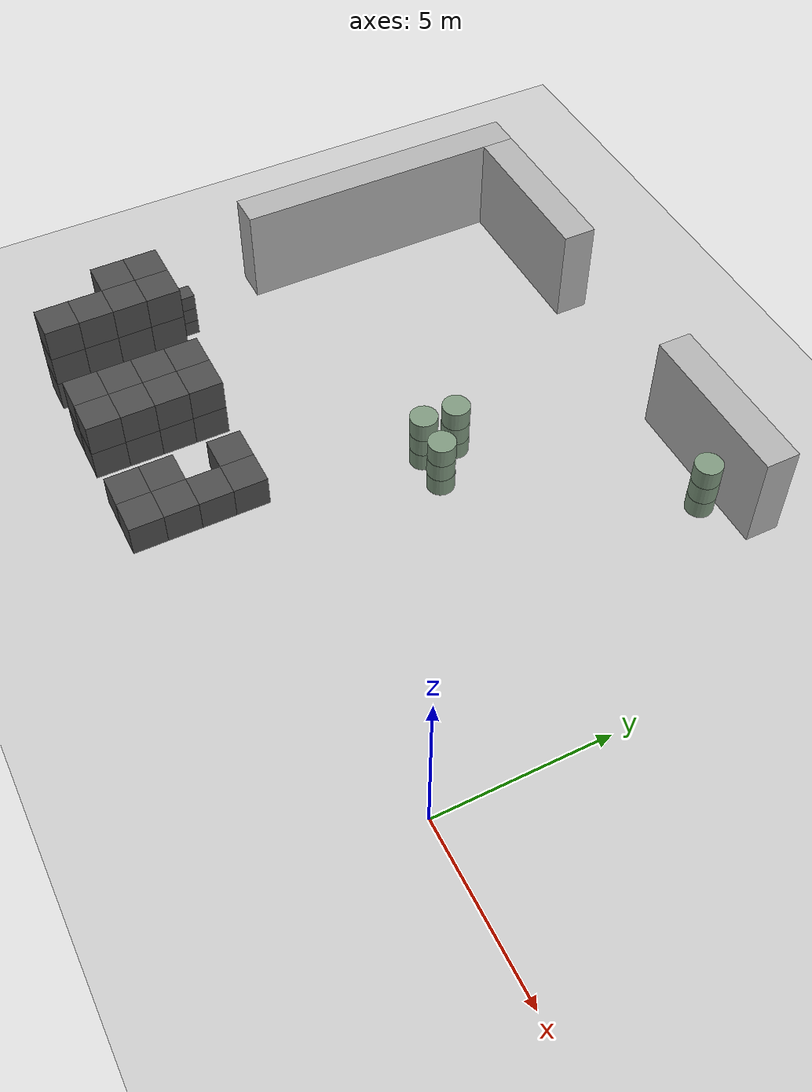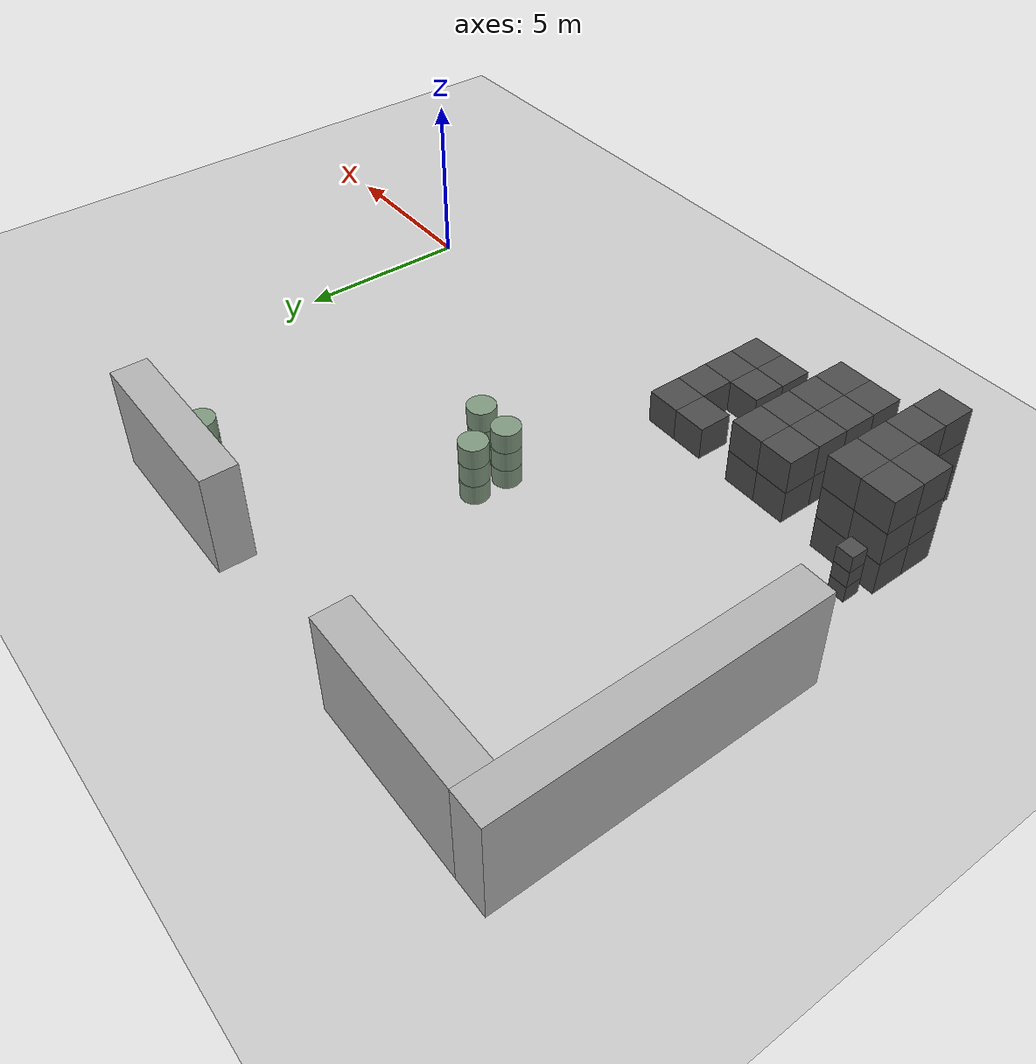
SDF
<sdf version="1.6">
 <world name="default">
  <include><uri>model://ground_plane</uri></include>
  <model name="wall_1">
   <pose>-19.0 8.0 1.5 0 -0 0</pose>
   <static>True</static>
   <link name="link">
    <inertial>
     <mass>100</mass>
     <inertia>
      <ixx>0.166667</ixx>
      <ixy>0</ixy>
      <ixz>0</ixz>
      <iyy>0.166667</iyy>
      <iyz>0</iyz>
      <izz>0.166667</izz>
     </inertia>
    </inertial>
    <collision name="collision"><geometry><box><size>1.0 9.0 3.0</size></box></geometry></collision>
    <visual name="visual">
     <geometry><box><size>1.0 9.0 3.0</size></box></geometry>
     <material><ambient>0.7 0.7 0.7 1</ambient><diffuse>0.7 0.7 0.7 1</diffuse></material>
    </visual>
   </link>
  </model>
  <model name="wall_9">
   <pose>-16.0 12.0 1.5 0 -0 0</pose>
   <static>True</static>
   <link name="link">
    <inertial>
     <mass>100</mass>
     <inertia>
      <ixx>0.166667</ixx>
      <ixy>0</ixy>
      <ixz>0</ixz>
      <iyy>0.166667</iyy>
      <iyz>0</iyz>
      <izz>0.166667</izz>
     </inertia>
    </inertial>
    <collision name="collision"><geometry><box><size>5.0 1.0 3.0</size></box></geometry></collision>
    <visual name="visual">
     <geometry><box><size>5.0 1.0 3.0</size></box></geometry>
     <material><ambient>0.7 0.7 0.7 1</ambient><diffuse>0.7 0.7 0.7 1</diffuse></material>
    </visual>
   </link>
  </model>
  <model name="wall_10">
   <pose>-6.0 12.0 1.5 0 -0 0</pose>
   <static>True</static>
   <link name="link">
    <inertial>
     <mass>100</mass>
     <inertia>
      <ixx>0.166667</ixx>
      <ixy>0</ixy>
      <ixz>0</ixz>
      <iyy>0.166667</iyy>
      <iyz>0</iyz>
      <izz>0.166667</izz>
     </inertia>
    </inertial>
    <collision name="collision"><geometry><box><size>5.0 1.0 3.0</size></box></geometry></collision>
    <visual name="visual">
     <geometry><box><size>5.0 1.0 3.0</size></box></geometry>
     <material><ambient>0.7 0.7 0.7 1</ambient><diffuse>0.7 0.7 0.7 1</diffuse></material>
    </visual>
   </link>
  </model>
  <model name="unit_box_6">
   <pose>-18.0 -1.0 0.5 0 -0 0</pose>
   <static>True</static>
   <link name="link">
    <inertial>
     <mass>100</mass>
     <inertia>
      <ixx>0.166667</ixx>
      <ixy>0</ixy>
      <ixz>0</ixz>
      <iyy>0.166667</iyy>
      <iyz>0</iyz>
      <izz>0.166667</izz>
     </inertia>
    </inertial>
    <collision name="collision"><geometry><box><size>1.0 1.0 1.0</size></box></geometry></collision>
    <visual name="visual">
     <geometry><box><size>1.0 1.0 1.0</size></box></geometry>
     <material><ambient>0.3 0.3 0.3 1</ambient><diffuse>0.3 0.3 0.3 1</diffuse></material>
    </visual>
   </link>
  </model>
  <model name="unit_box_7">
   <pose>-18.0 -1.0 1.5 0 -0 0</pose>
   <static>True</static>
   <link name="link">
    <inertial>
     <mass>100</mass>
     <inertia>
      <ixx>0.166667</ixx>
      <ixy>0</ixy>
      <ixz>0</ixz>
      <iyy>0.166667</iyy>
      <iyz>0</iyz>
      <izz>0.166667</izz>
     </inertia>
    </inertial>
    <collision name="collision"><geometry><box><size>1.0 1.0 1.0</size></box></geometry></collision>
    <visual name="visual">
     <geometry><box><size>1.0 1.0 1.0</size></box></geometry>
     <material><ambient>0.3 0.3 0.3 1</ambient><diffuse>0.3 0.3 0.3 1</diffuse></material>
    </visual>
   </link>
  </model>
  <model name="unit_box_8">
   <pose>-18.0 -1.0 2.5 0 -0 0</pose>
   <static>True</static>
   <link name="link">
    <inertial>
     <mass>100</mass>
     <inertia>
      <ixx>0.166667</ixx>
      <ixy>0</ixy>
      <ixz>0</ixz>
      <iyy>0.166667</iyy>
      <iyz>0</iyz>
      <izz>0.166667</izz>
     </inertia>
    </inertial>
    <collision name="collision"><geometry><box><size>1.0 1.0 1.0</size></box></geometry></collision>
    <visual name="visual">
     <geometry><box><size>1.0 1.0 1.0</size></box></geometry>
     <material><ambient>0.3 0.3 0.3 1</ambient><diffuse>0.3 0.3 0.3 1</diffuse></material>
    </visual>
   </link>
  </model>
  <model name="unit_box_9">
   <pose>-18.0 0.0 0.5 0 -0 0</pose>
   <static>True</static>
   <link name="link">
    <inertial>
     <mass>100</mass>
     <inertia>
      <ixx>0.166667</ixx>
      <ixy>0</ixy>
      <ixz>0</ixz>
      <iyy>0.166667</iyy>
      <iyz>0</iyz>
      <izz>0.166667</izz>
     </inertia>
    </inertial>
    <collision name="collision"><geometry><box><size>1.0 1.0 1.0</size></box></geometry></collision>
    <visual name="visual">
     <geometry><box><size>1.0 1.0 1.0</size></box></geometry>
     <material><ambient>0.3 0.3 0.3 1</ambient><diffuse>0.3 0.3 0.3 1</diffuse></material>
    </visual>
   </link>
  </model>
  <model name="unit_box_10">
   <pose>-18.0 0.0 1.5 0 -0 0</pose>
   <static>True</static>
   <link name="link">
    <inertial>
     <mass>100</mass>
     <inertia>
      <ixx>0.166667</ixx>
      <ixy>0</ixy>
      <ixz>0</ixz>
      <iyy>0.166667</iyy>
      <iyz>0</iyz>
      <izz>0.166667</izz>
     </inertia>
    </inertial>
    <collision name="collision"><geometry><box><size>1.0 1.0 1.0</size></box></geometry></collision>
    <visual name="visual">
     <geometry><box><size>1.0 1.0 1.0</size></box></geometry>
     <material><ambient>0.3 0.3 0.3 1</ambient><diffuse>0.3 0.3 0.3 1</diffuse></material>
    </visual>
   </link>
  </model>
  <model name="unit_box_11">
   <pose>-18.0 0.0 2.5 0 -0 0</pose>
   <static>True</static>
   <link name="link">
    <inertial>
     <mass>100</mass>
     <inertia>
      <ixx>0.166667</ixx>
      <ixy>0</ixy>
      <ixz>0</ixz>
      <iyy>0.166667</iyy>
      <iyz>0</iyz>
      <izz>0.166667</izz>
     </inertia>
    </inertial>
    <collision name="collision"><geometry><box><size>1.0 1.0 1.0</size></box></geometry></collision>
    <visual name="visual">
     <geometry><box><size>1.0 1.0 1.0</size></box></geometry>
     <material><ambient>0.3 0.3 0.3 1</ambient><diffuse>0.3 0.3 0.3 1</diffuse></material>
    </visual>
   </link>
  </model>
  <model name="unit_box_12">
   <pose>-18.0 1.0 0.25 0 -0 0</pose>
   <static>True</static>
   <link name="link">
    <inertial>
     <mass>100</mass>
     <inertia>
      <ixx>0.166667</ixx>
      <ixy>0</ixy>
      <ixz>0</ixz>
      <iyy>0.166667</iyy>
      <iyz>0</iyz>
      <izz>0.166667</izz>
     </inertia>
    </inertial>
    <collision name="collision"><geometry><box><size>0.5 0.5 0.5</size></box></geometry></collision>
    <visual name="visual">
     <geometry><box><size>0.5 0.5 0.5</size></box></geometry>
     <material><ambient>0.3 0.3 0.3 1</ambient><diffuse>0.3 0.3 0.3 1</diffuse></material>
    </visual>
   </link>
  </model>
  <model name="unit_box_13">
   <pose>-18.0 1.0 0.75 0 -0 0</pose>
   <static>True</static>
   <link name="link">
    <inertial>
     <mass>100</mass>
     <inertia>
      <ixx>0.166667</ixx>
      <ixy>0</ixy>
      <ixz>0</ixz>
      <iyy>0.166667</iyy>
      <iyz>0</iyz>
      <izz>0.166667</izz>
     </inertia>
    </inertial>
    <collision name="collision"><geometry><box><size>0.5 0.5 0.5</size></box></geometry></collision>
    <visual name="visual">
     <geometry><box><size>0.5 0.5 0.5</size></box></geometry>
     <material><ambient>0.3 0.3 0.3 1</ambient><diffuse>0.3 0.3 0.3 1</diffuse></material>
    </visual>
   </link>
  </model>
  <model name="unit_box_14">
   <pose>-18.0 1.0 1.25 0 -0 0</pose>
   <static>True</static>
   <link name="link">
    <inertial>
     <mass>100</mass>
     <inertia>
      <ixx>0.166667</ixx>
      <ixy>0</ixy>
      <ixz>0</ixz>
      <iyy>0.166667</iyy>
      <iyz>0</iyz>
      <izz>0.166667</izz>
     </inertia>
    </inertial>
    <collision name="collision"><geometry><box><size>0.5 0.5 0.5</size></box></geometry></collision>
    <visual name="visual">
     <geometry><box><size>0.5 0.5 0.5</size></box></geometry>
     <material><ambient>0.3 0.3 0.3 1</ambient><diffuse>0.3 0.3 0.3 1</diffuse></material>
    </visual>
   </link>
  </model>
  <model name="unit_box_18">
   <pose>-17.0 -3.0 0.5 0 -0 0</pose>
   <static>True</static>
   <link name="link">
    <inertial>
     <mass>100</mass>
     <inertia>
      <ixx>0.166667</ixx>
      <ixy>0</ixy>
      <ixz>0</ixz>
      <iyy>0.166667</iyy>
      <iyz>0</iyz>
      <izz>0.166667</izz>
     </inertia>
    </inertial>
    <collision name="collision"><geometry><box><size>1.0 1.0 1.0</size></box></geometry></collision>
    <visual name="visual">
     <geometry><box><size>1.0 1.0 1.0</size></box></geometry>
     <material><ambient>0.3 0.3 0.3 1</ambient><diffuse>0.3 0.3 0.3 1</diffuse></material>
    </visual>
   </link>
  </model>
  <model name="unit_box_19">
   <pose>-17.0 -3.0 1.5 0 -0 0</pose>
   <static>True</static>
   <link name="link">
    <inertial>
     <mass>100</mass>
     <inertia>
      <ixx>0.166667</ixx>
      <ixy>0</ixy>
      <ixz>0</ixz>
      <iyy>0.166667</iyy>
      <iyz>0</iyz>
      <izz>0.166667</izz>
     </inertia>
    </inertial>
    <collision name="collision"><geometry><box><size>1.0 1.0 1.0</size></box></geometry></collision>
    <visual name="visual">
     <geometry><box><size>1.0 1.0 1.0</size></box></geometry>
     <material><ambient>0.3 0.3 0.3 1</ambient><diffuse>0.3 0.3 0.3 1</diffuse></material>
    </visual>
   </link>
  </model>
  <model name="unit_box_20">
   <pose>-17.0 -3.0 2.5 0 -0 0</pose>
   <static>True</static>
   <link name="link">
    <inertial>
     <mass>100</mass>
     <inertia>
      <ixx>0.166667</ixx>
      <ixy>0</ixy>
      <ixz>0</ixz>
      <iyy>0.166667</iyy>
      <iyz>0</iyz>
      <izz>0.166667</izz>
     </inertia>
    </inertial>
    <collision name="collision"><geometry><box><size>1.0 1.0 1.0</size></box></geometry></collision>
    <visual name="visual">
     <geometry><box><size>1.0 1.0 1.0</size></box></geometry>
     <material><ambient>0.3 0.3 0.3 1</ambient><diffuse>0.3 0.3 0.3 1</diffuse></material>
    </visual>
   </link>
  </model>
  <model name="unit_box_21">
   <pose>-17.0 -2.0 0.5 0 -0 0</pose>
   <static>True</static>
   <link name="link">
    <inertial>
     <mass>100</mass>
     <inertia>
      <ixx>0.166667</ixx>
      <ixy>0</ixy>
      <ixz>0</ixz>
      <iyy>0.166667</iyy>
      <iyz>0</iyz>
      <izz>0.166667</izz>
     </inertia>
    </inertial>
    <collision name="collision"><geometry><box><size>1.0 1.0 1.0</size></box></geometry></collision>
    <visual name="visual">
     <geometry><box><size>1.0 1.0 1.0</size></box></geometry>
     <material><ambient>0.3 0.3 0.3 1</ambient><diffuse>0.3 0.3 0.3 1</diffuse></material>
    </visual>
   </link>
  </model>
  <model name="unit_box_22">
   <pose>-17.0 -2.0 1.5 0 -0 0</pose>
   <static>True</static>
   <link name="link">
    <inertial>
     <mass>100</mass>
     <inertia>
      <ixx>0.166667</ixx>
      <ixy>0</ixy>
      <ixz>0</ixz>
      <iyy>0.166667</iyy>
      <iyz>0</iyz>
      <izz>0.166667</izz>
     </inertia>
    </inertial>
    <collision name="collision"><geometry><box><size>1.0 1.0 1.0</size></box></geometry></collision>
    <visual name="visual">
     <geometry><box><size>1.0 1.0 1.0</size></box></geometry>
     <material><ambient>0.3 0.3 0.3 1</ambient><diffuse>0.3 0.3 0.3 1</diffuse></material>
    </visual>
   </link>
  </model>
  <model name="unit_box_23">
   <pose>-17.0 -2.0 2.5 0 -0 0</pose>
   <static>True</static>
   <link name="link">
    <inertial>
     <mass>100</mass>
     <inertia>
      <ixx>0.166667</ixx>
      <ixy>0</ixy>
      <ixz>0</ixz>
      <iyy>0.166667</iyy>
      <iyz>0</iyz>
      <izz>0.166667</izz>
     </inertia>
    </inertial>
    <collision name="collision"><geometry><box><size>1.0 1.0 1.0</size></box></geometry></collision>
    <visual name="visual">
     <geometry><box><size>1.0 1.0 1.0</size></box></geometry>
     <material><ambient>0.3 0.3 0.3 1</ambient><diffuse>0.3 0.3 0.3 1</diffuse></material>
    </visual>
   </link>
  </model>
  <model name="unit_box_24">
   <pose>-17.0 -1.0 0.5 0 -0 0</pose>
   <static>True</static>
   <link name="link">
    <inertial>
     <mass>100</mass>
     <inertia>
      <ixx>0.166667</ixx>
      <ixy>0</ixy>
      <ixz>0</ixz>
      <iyy>0.166667</iyy>
      <iyz>0</iyz>
      <izz>0.166667</izz>
     </inertia>
    </inertial>
    <collision name="collision"><geometry><box><size>1.0 1.0 1.0</size></box></geometry></collision>
    <visual name="visual">
     <geometry><box><size>1.0 1.0 1.0</size></box></geometry>
     <material><ambient>0.3 0.3 0.3 1</ambient><diffuse>0.3 0.3 0.3 1</diffuse></material>
    </visual>
   </link>
  </model>
  <model name="unit_box_25">
   <pose>-17.0 -1.0 1.5 0 -0 0</pose>
   <static>True</static>
   <link name="link">
    <inertial>
     <mass>100</mass>
     <inertia>
      <ixx>0.166667</ixx>
      <ixy>0</ixy>
      <ixz>0</ixz>
      <iyy>0.166667</iyy>
      <iyz>0</iyz>
      <izz>0.166667</izz>
     </inertia>
    </inertial>
    <collision name="collision"><geometry><box><size>1.0 1.0 1.0</size></box></geometry></collision>
    <visual name="visual">
     <geometry><box><size>1.0 1.0 1.0</size></box></geometry>
     <material><ambient>0.3 0.3 0.3 1</ambient><diffuse>0.3 0.3 0.3 1</diffuse></material>
    </visual>
   </link>
  </model>
  <model name="unit_box_26">
   <pose>-17.0 -1.0 2.5 0 -0 0</pose>
   <static>True</static>
   <link name="link">
    <inertial>
     <mass>100</mass>
     <inertia>
      <ixx>0.166667</ixx>
      <ixy>0</ixy>
      <ixz>0</ixz>
      <iyy>0.166667</iyy>
      <iyz>0</iyz>
      <izz>0.166667</izz>
     </inertia>
    </inertial>
    <collision name="collision"><geometry><box><size>1.0 1.0 1.0</size></box></geometry></collision>
    <visual name="visual">
     <geometry><box><size>1.0 1.0 1.0</size></box></geometry>
     <material><ambient>0.3 0.3 0.3 1</ambient><diffuse>0.3 0.3 0.3 1</diffuse></material>
    </visual>
   </link>
  </model>
  <model name="unit_box_27">
   <pose>-17.0 0.0 0.5 0 -0 0</pose>
   <static>True</static>
   <link name="link">
    <inertial>
     <mass>100</mass>
     <inertia>
      <ixx>0.166667</ixx>
      <ixy>0</ixy>
      <ixz>0</ixz>
      <iyy>0.166667</iyy>
      <iyz>0</iyz>
      <izz>0.166667</izz>
     </inertia>
    </inertial>
    <collision name="collision"><geometry><box><size>1.0 1.0 1.0</size></box></geometry></collision>
    <visual name="visual">
     <geometry><box><size>1.0 1.0 1.0</size></box></geometry>
     <material><ambient>0.3 0.3 0.3 1</ambient><diffuse>0.3 0.3 0.3 1</diffuse></material>
    </visual>
   </link>
  </model>
  <model name="unit_box_28">
   <pose>-17.0 0.0 1.5 0 -0 0</pose>
   <static>True</static>
   <link name="link">
    <inertial>
     <mass>100</mass>
     <inertia>
      <ixx>0.166667</ixx>
      <ixy>0</ixy>
      <ixz>0</ixz>
      <iyy>0.166667</iyy>
      <iyz>0</iyz>
      <izz>0.166667</izz>
     </inertia>
    </inertial>
    <collision name="collision"><geometry><box><size>1.0 1.0 1.0</size></box></geometry></collision>
    <visual name="visual">
     <geometry><box><size>1.0 1.0 1.0</size></box></geometry>
     <material><ambient>0.3 0.3 0.3 1</ambient><diffuse>0.3 0.3 0.3 1</diffuse></material>
    </visual>
   </link>
  </model>
  <model name="unit_box_29">
   <pose>-17.0 0.0 2.5 0 -0 0</pose>
   <static>True</static>
   <link name="link">
    <inertial>
     <mass>100</mass>
     <inertia>
      <ixx>0.166667</ixx>
      <ixy>0</ixy>
      <ixz>0</ixz>
      <iyy>0.166667</iyy>
      <iyz>0</iyz>
      <izz>0.166667</izz>
     </inertia>
    </inertial>
    <collision name="collision"><geometry><box><size>1.0 1.0 1.0</size></box></geometry></collision>
    <visual name="visual">
     <geometry><box><size>1.0 1.0 1.0</size></box></geometry>
     <material><ambient>0.3 0.3 0.3 1</ambient><diffuse>0.3 0.3 0.3 1</diffuse></material>
    </visual>
   </link>
  </model>
  <model name="unit_box_30">
   <pose>-16.0 -1.0 0.25 0 -0 0</pose>
   <static>True</static>
   <link name="link">
    <inertial>
     <mass>100</mass>
     <inertia>
      <ixx>0.166667</ixx>
      <ixy>0</ixy>
      <ixz>0</ixz>
      <iyy>0.166667</iyy>
      <iyz>0</iyz>
      <izz>0.166667</izz>
     </inertia>
    </inertial>
    <collision name="collision"><geometry><box><size>0.5 0.5 0.5</size></box></geometry></collision>
    <visual name="visual">
     <geometry><box><size>0.5 0.5 0.5</size></box></geometry>
     <material><ambient>0.3 0.3 0.3 1</ambient><diffuse>0.3 0.3 0.3 1</diffuse></material>
    </visual>
   </link>
  </model>
  <model name="unit_box_33">
   <pose>-15.0 -3.0 0.5 0 -0 0</pose>
   <static>True</static>
   <link name="link">
    <inertial>
     <mass>100</mass>
     <inertia>
      <ixx>0.166667</ixx>
      <ixy>0</ixy>
      <ixz>0</ixz>
      <iyy>0.166667</iyy>
      <iyz>0</iyz>
      <izz>0.166667</izz>
     </inertia>
    </inertial>
    <collision name="collision"><geometry><box><size>1.0 1.0 1.0</size></box></geometry></collision>
    <visual name="visual">
     <geometry><box><size>1.0 1.0 1.0</size></box></geometry>
     <material><ambient>0.3 0.3 0.3 1</ambient><diffuse>0.3 0.3 0.3 1</diffuse></material>
    </visual>
   </link>
  </model>
  <model name="unit_box_34">
   <pose>-15.0 -3.0 1.5 0 -0 0</pose>
   <static>True</static>
   <link name="link">
    <inertial>
     <mass>100</mass>
     <inertia>
      <ixx>0.166667</ixx>
      <ixy>0</ixy>
      <ixz>0</ixz>
      <iyy>0.166667</iyy>
      <iyz>0</iyz>
      <izz>0.166667</izz>
     </inertia>
    </inertial>
    <collision name="collision"><geometry><box><size>1.0 1.0 1.0</size></box></geometry></collision>
    <visual name="visual">
     <geometry><box><size>1.0 1.0 1.0</size></box></geometry>
     <material><ambient>0.3 0.3 0.3 1</ambient><diffuse>0.3 0.3 0.3 1</diffuse></material>
    </visual>
   </link>
  </model>
  <model name="unit_box_35">
   <pose>-15.0 -2.0 0.5 0 -0 0</pose>
   <static>True</static>
   <link name="link">
    <inertial>
     <mass>100</mass>
     <inertia>
      <ixx>0.166667</ixx>
      <ixy>0</ixy>
      <ixz>0</ixz>
      <iyy>0.166667</iyy>
      <iyz>0</iyz>
      <izz>0.166667</izz>
     </inertia>
    </inertial>
    <collision name="collision"><geometry><box><size>1.0 1.0 1.0</size></box></geometry></collision>
    <visual name="visual">
     <geometry><box><size>1.0 1.0 1.0</size></box></geometry>
     <material><ambient>0.3 0.3 0.3 1</ambient><diffuse>0.3 0.3 0.3 1</diffuse></material>
    </visual>
   </link>
  </model>
  <model name="unit_box_36">
   <pose>-15.0 -2.0 1.5 0 -0 0</pose>
   <static>True</static>
   <link name="link">
    <inertial>
     <mass>100</mass>
     <inertia>
      <ixx>0.166667</ixx>
      <ixy>0</ixy>
      <ixz>0</ixz>
      <iyy>0.166667</iyy>
      <iyz>0</iyz>
      <izz>0.166667</izz>
     </inertia>
    </inertial>
    <collision name="collision"><geometry><box><size>1.0 1.0 1.0</size></box></geometry></collision>
    <visual name="visual">
     <geometry><box><size>1.0 1.0 1.0</size></box></geometry>
     <material><ambient>0.3 0.3 0.3 1</ambient><diffuse>0.3 0.3 0.3 1</diffuse></material>
    </visual>
   </link>
  </model>
  <model name="unit_box_37">
   <pose>-15.0 -1.0 0.5 0 -0 0</pose>
   <static>True</static>
   <link name="link">
    <inertial>
     <mass>100</mass>
     <inertia>
      <ixx>0.166667</ixx>
      <ixy>0</ixy>
      <ixz>0</ixz>
      <iyy>0.166667</iyy>
      <iyz>0</iyz>
      <izz>0.166667</izz>
     </inertia>
    </inertial>
    <collision name="collision"><geometry><box><size>1.0 1.0 1.0</size></box></geometry></collision>
    <visual name="visual">
     <geometry><box><size>1.0 1.0 1.0</size></box></geometry>
     <material><ambient>0.3 0.3 0.3 1</ambient><diffuse>0.3 0.3 0.3 1</diffuse></material>
    </visual>
   </link>
  </model>
  <model name="unit_box_38">
   <pose>-15.0 -1.0 1.5 0 -0 0</pose>
   <static>True</static>
   <link name="link">
    <inertial>
     <mass>100</mass>
     <inertia>
      <ixx>0.166667</ixx>
      <ixy>0</ixy>
      <ixz>0</ixz>
      <iyy>0.166667</iyy>
      <iyz>0</iyz>
      <izz>0.166667</izz>
     </inertia>
    </inertial>
    <collision name="collision"><geometry><box><size>1.0 1.0 1.0</size></box></geometry></collision>
    <visual name="visual">
     <geometry><box><size>1.0 1.0 1.0</size></box></geometry>
     <material><ambient>0.3 0.3 0.3 1</ambient><diffuse>0.3 0.3 0.3 1</diffuse></material>
    </visual>
   </link>
  </model>
  <model name="unit_box_39">
   <pose>-15.0 0.0 0.5 0 -0 0</pose>
   <static>True</static>
   <link name="link">
    <inertial>
     <mass>100</mass>
     <inertia>
      <ixx>0.166667</ixx>
      <ixy>0</ixy>
      <ixz>0</ixz>
      <iyy>0.166667</iyy>
      <iyz>0</iyz>
      <izz>0.166667</izz>
     </inertia>
    </inertial>
    <collision name="collision"><geometry><box><size>1.0 1.0 1.0</size></box></geometry></collision>
    <visual name="visual">
     <geometry><box><size>1.0 1.0 1.0</size></box></geometry>
     <material><ambient>0.3 0.3 0.3 1</ambient><diffuse>0.3 0.3 0.3 1</diffuse></material>
    </visual>
   </link>
  </model>
  <model name="unit_box_40">
   <pose>-15.0 0.0 1.5 0 -0 0</pose>
   <static>True</static>
   <link name="link">
    <inertial>
     <mass>100</mass>
     <inertia>
      <ixx>0.166667</ixx>
      <ixy>0</ixy>
      <ixz>0</ixz>
      <iyy>0.166667</iyy>
      <iyz>0</iyz>
      <izz>0.166667</izz>
     </inertia>
    </inertial>
    <collision name="collision"><geometry><box><size>1.0 1.0 1.0</size></box></geometry></collision>
    <visual name="visual">
     <geometry><box><size>1.0 1.0 1.0</size></box></geometry>
     <material><ambient>0.3 0.3 0.3 1</ambient><diffuse>0.3 0.3 0.3 1</diffuse></material>
    </visual>
   </link>
  </model>
  <model name="unit_box_43">
   <pose>-14.0 -3.0 0.5 0 -0 0</pose>
   <static>True</static>
   <link name="link">
    <inertial>
     <mass>100</mass>
     <inertia>
      <ixx>0.166667</ixx>
      <ixy>0</ixy>
      <ixz>0</ixz>
      <iyy>0.166667</iyy>
      <iyz>0</iyz>
      <izz>0.166667</izz>
     </inertia>
    </inertial>
    <collision name="collision"><geometry><box><size>1.0 1.0 1.0</size></box></geometry></collision>
    <visual name="visual">
     <geometry><box><size>1.0 1.0 1.0</size></box></geometry>
     <material><ambient>0.3 0.3 0.3 1</ambient><diffuse>0.3 0.3 0.3 1</diffuse></material>
    </visual>
   </link>
  </model>
  <model name="unit_box_44">
   <pose>-14.0 -3.0 1.5 0 -0 0</pose>
   <static>True</static>
   <link name="link">
    <inertial>
     <mass>100</mass>
     <inertia>
      <ixx>0.166667</ixx>
      <ixy>0</ixy>
      <ixz>0</ixz>
      <iyy>0.166667</iyy>
      <iyz>0</iyz>
      <izz>0.166667</izz>
     </inertia>
    </inertial>
    <collision name="collision"><geometry><box><size>1.0 1.0 1.0</size></box></geometry></collision>
    <visual name="visual">
     <geometry><box><size>1.0 1.0 1.0</size></box></geometry>
     <material><ambient>0.3 0.3 0.3 1</ambient><diffuse>0.3 0.3 0.3 1</diffuse></material>
    </visual>
   </link>
  </model>
  <model name="unit_box_45">
   <pose>-14.0 -2.0 0.5 0 -0 0</pose>
   <static>True</static>
   <link name="link">
    <inertial>
     <mass>100</mass>
     <inertia>
      <ixx>0.166667</ixx>
      <ixy>0</ixy>
      <ixz>0</ixz>
      <iyy>0.166667</iyy>
      <iyz>0</iyz>
      <izz>0.166667</izz>
     </inertia>
    </inertial>
    <collision name="collision"><geometry><box><size>1.0 1.0 1.0</size></box></geometry></collision>
    <visual name="visual">
     <geometry><box><size>1.0 1.0 1.0</size></box></geometry>
     <material><ambient>0.3 0.3 0.3 1</ambient><diffuse>0.3 0.3 0.3 1</diffuse></material>
    </visual>
   </link>
  </model>
  <model name="unit_box_46">
   <pose>-14.0 -2.0 1.5 0 -0 0</pose>
   <static>True</static>
   <link name="link">
    <inertial>
     <mass>100</mass>
     <inertia>
      <ixx>0.166667</ixx>
      <ixy>0</ixy>
      <ixz>0</ixz>
      <iyy>0.166667</iyy>
      <iyz>0</iyz>
      <izz>0.166667</izz>
     </inertia>
    </inertial>
    <collision name="collision"><geometry><box><size>1.0 1.0 1.0</size></box></geometry></collision>
    <visual name="visual">
     <geometry><box><size>1.0 1.0 1.0</size></box></geometry>
     <material><ambient>0.3 0.3 0.3 1</ambient><diffuse>0.3 0.3 0.3 1</diffuse></material>
    </visual>
   </link>
  </model>
  <model name="unit_box_47">
   <pose>-14.0 -1.0 0.5 0 -0 0</pose>
   <static>True</static>
   <link name="link">
    <inertial>
     <mass>100</mass>
     <inertia>
      <ixx>0.166667</ixx>
      <ixy>0</ixy>
      <ixz>0</ixz>
      <iyy>0.166667</iyy>
      <iyz>0</iyz>
      <izz>0.166667</izz>
     </inertia>
    </inertial>
    <collision name="collision"><geometry><box><size>1.0 1.0 1.0</size></box></geometry></collision>
    <visual name="visual">
     <geometry><box><size>1.0 1.0 1.0</size></box></geometry>
     <material><ambient>0.3 0.3 0.3 1</ambient><diffuse>0.3 0.3 0.3 1</diffuse></material>
    </visual>
   </link>
  </model>
  <model name="unit_box_48">
   <pose>-14.0 -1.0 1.5 0 -0 0</pose>
   <static>True</static>
   <link name="link">
    <inertial>
     <mass>100</mass>
     <inertia>
      <ixx>0.166667</ixx>
      <ixy>0</ixy>
      <ixz>0</ixz>
      <iyy>0.166667</iyy>
      <iyz>0</iyz>
      <izz>0.166667</izz>
     </inertia>
    </inertial>
    <collision name="collision"><geometry><box><size>1.0 1.0 1.0</size></box></geometry></collision>
    <visual name="visual">
     <geometry><box><size>1.0 1.0 1.0</size></box></geometry>
     <material><ambient>0.3 0.3 0.3 1</ambient><diffuse>0.3 0.3 0.3 1</diffuse></material>
    </visual>
   </link>
  </model>
  <model name="unit_box_49">
   <pose>-14.0 0.0 0.5 0 -0 0</pose>
   <static>True</static>
   <link name="link">
    <inertial>
     <mass>100</mass>
     <inertia>
      <ixx>0.166667</ixx>
      <ixy>0</ixy>
      <ixz>0</ixz>
      <iyy>0.166667</iyy>
      <iyz>0</iyz>
      <izz>0.166667</izz>
     </inertia>
    </inertial>
    <collision name="collision"><geometry><box><size>1.0 1.0 1.0</size></box></geometry></collision>
    <visual name="visual">
     <geometry><box><size>1.0 1.0 1.0</size></box></geometry>
     <material><ambient>0.3 0.3 0.3 1</ambient><diffuse>0.3 0.3 0.3 1</diffuse></material>
    </visual>
   </link>
  </model>
  <model name="unit_box_50">
   <pose>-14.0 0.0 1.5 0 -0 0</pose>
   <static>True</static>
   <link name="link">
    <inertial>
     <mass>100</mass>
     <inertia>
      <ixx>0.166667</ixx>
      <ixy>0</ixy>
      <ixz>0</ixz>
      <iyy>0.166667</iyy>
      <iyz>0</iyz>
      <izz>0.166667</izz>
     </inertia>
    </inertial>
    <collision name="collision"><geometry><box><size>1.0 1.0 1.0</size></box></geometry></collision>
    <visual name="visual">
     <geometry><box><size>1.0 1.0 1.0</size></box></geometry>
     <material><ambient>0.3 0.3 0.3 1</ambient><diffuse>0.3 0.3 0.3 1</diffuse></material>
    </visual>
   </link>
  </model>
  <model name="unit_box_52">
   <pose>-12.0 -3.0 0.5 0 -0 0</pose>
   <static>True</static>
   <link name="link">
    <inertial>
     <mass>100</mass>
     <inertia>
      <ixx>0.166667</ixx>
      <ixy>0</ixy>
      <ixz>0</ixz>
      <iyy>0.166667</iyy>
      <iyz>0</iyz>
      <izz>0.166667</izz>
     </inertia>
    </inertial>
    <collision name="collision"><geometry><box><size>1.0 1.0 1.0</size></box></geometry></collision>
    <visual name="visual">
     <geometry><box><size>1.0 1.0 1.0</size></box></geometry>
     <material><ambient>0.3 0.3 0.3 1</ambient><diffuse>0.3 0.3 0.3 1</diffuse></material>
    </visual>
   </link>
  </model>
  <model name="unit_box_53">
   <pose>-12.0 -2.0 0.5 0 -0 0</pose>
   <static>True</static>
   <link name="link">
    <inertial>
     <mass>100</mass>
     <inertia>
      <ixx>0.166667</ixx>
      <ixy>0</ixy>
      <ixz>0</ixz>
      <iyy>0.166667</iyy>
      <iyz>0</iyz>
      <izz>0.166667</izz>
     </inertia>
    </inertial>
    <collision name="collision"><geometry><box><size>1.0 1.0 1.0</size></box></geometry></collision>
    <visual name="visual">
     <geometry><box><size>1.0 1.0 1.0</size></box></geometry>
     <material><ambient>0.3 0.3 0.3 1</ambient><diffuse>0.3 0.3 0.3 1</diffuse></material>
    </visual>
   </link>
  </model>
  <model name="unit_box_54">
   <pose>-12.0 0.0 0.5 0 -0 0</pose>
   <static>True</static>
   <link name="link">
    <inertial>
     <mass>100</mass>
     <inertia>
      <ixx>0.166667</ixx>
      <ixy>0</ixy>
      <ixz>0</ixz>
      <iyy>0.166667</iyy>
      <iyz>0</iyz>
      <izz>0.166667</izz>
     </inertia>
    </inertial>
    <collision name="collision"><geometry><box><size>1.0 1.0 1.0</size></box></geometry></collision>
    <visual name="visual">
     <geometry><box><size>1.0 1.0 1.0</size></box></geometry>
     <material><ambient>0.3 0.3 0.3 1</ambient><diffuse>0.3 0.3 0.3 1</diffuse></material>
    </visual>
   </link>
  </model>
  <model name="unit_box_56">
   <pose>-11.0 -3.0 0.5 0 -0 0</pose>
   <static>True</static>
   <link name="link">
    <inertial>
     <mass>100</mass>
     <inertia>
      <ixx>0.166667</ixx>
      <ixy>0</ixy>
      <ixz>0</ixz>
      <iyy>0.166667</iyy>
      <iyz>0</iyz>
      <izz>0.166667</izz>
     </inertia>
    </inertial>
    <collision name="collision"><geometry><box><size>1.0 1.0 1.0</size></box></geometry></collision>
    <visual name="visual">
     <geometry><box><size>1.0 1.0 1.0</size></box></geometry>
     <material><ambient>0.3 0.3 0.3 1</ambient><diffuse>0.3 0.3 0.3 1</diffuse></material>
    </visual>
   </link>
  </model>
  <model name="unit_box_57">
   <pose>-11.0 -2.0 0.5 0 -0 0</pose>
   <static>True</static>
   <link name="link">
    <inertial>
     <mass>100</mass>
     <inertia>
      <ixx>0.166667</ixx>
      <ixy>0</ixy>
      <ixz>0</ixz>
      <iyy>0.166667</iyy>
      <iyz>0</iyz>
      <izz>0.166667</izz>
     </inertia>
    </inertial>
    <collision name="collision"><geometry><box><size>1.0 1.0 1.0</size></box></geometry></collision>
    <visual name="visual">
     <geometry><box><size>1.0 1.0 1.0</size></box></geometry>
     <material><ambient>0.3 0.3 0.3 1</ambient><diffuse>0.3 0.3 0.3 1</diffuse></material>
    </visual>
   </link>
  </model>
  <model name="unit_box_58">
   <pose>-11.0 -1.0 0.5 0 -0 0</pose>
   <static>True</static>
   <link name="link">
    <inertial>
     <mass>100</mass>
     <inertia>
      <ixx>0.166667</ixx>
      <ixy>0</ixy>
      <ixz>0</ixz>
      <iyy>0.166667</iyy>
      <iyz>0</iyz>
      <izz>0.166667</izz>
     </inertia>
    </inertial>
    <collision name="collision"><geometry><box><size>1.0 1.0 1.0</size></box></geometry></collision>
    <visual name="visual">
     <geometry><box><size>1.0 1.0 1.0</size></box></geometry>
     <material><ambient>0.3 0.3 0.3 1</ambient><diffuse>0.3 0.3 0.3 1</diffuse></material>
    </visual>
   </link>
  </model>
  <model name="unit_box_59">
   <pose>-11.0 0.0 0.5 0 -0 0</pose>
   <static>True</static>
   <link name="link">
    <inertial>
     <mass>100</mass>
     <inertia>
      <ixx>0.166667</ixx>
      <ixy>0</ixy>
      <ixz>0</ixz>
      <iyy>0.166667</iyy>
      <iyz>0</iyz>
      <izz>0.166667</izz>
     </inertia>
    </inertial>
    <collision name="collision"><geometry><box><size>1.0 1.0 1.0</size></box></geometry></collision>
    <visual name="visual">
     <geometry><box><size>1.0 1.0 1.0</size></box></geometry>
     <material><ambient>0.3 0.3 0.3 1</ambient><diffuse>0.3 0.3 0.3 1</diffuse></material>
    </visual>
   </link>
  </model>
  <model name="unit_cylinder_38">
   <pose>-10.0105611963 5.0050957661 0.3 0 -0 0</pose>
   <static>True</static>
   <link name="link">
    <inertial>
     <mass>100</mass>
     <inertia><ixx>0.145833</ixx><ixy>0</ixy><ixz>0</ixz><iyy>0.145833</iyy><iyz>0</iyz><izz>0.125</izz></inertia>
    </inertial>
    <collision name="collision">
     <geometry><cylinder><radius>0.4</radius><length>0.6</length></cylinder></geometry>
     <max_contacts>100</max_contacts>
    </collision>
    <visual name="visual">
     <geometry><cylinder><radius>0.4</radius><length>0.6</length></cylinder></geometry>
     <material><ambient>0.5 0.6 0.5 1</ambient><diffuse>0.5 0.6 0.5 1</diffuse></material>
    </visual>
   </link>
  </model>
  <model name="unit_cylinder_39">
   <pose>-10.0089755799 5.00775393625 0.9 0 -0 0</pose>
   <static>True</static>
   <link name="link">
    <inertial>
     <mass>100</mass>
     <inertia><ixx>0.145833</ixx><ixy>0</ixy><ixz>0</ixz><iyy>0.145833</iyy><iyz>0</iyz><izz>0.125</izz></inertia>
    </inertial>
    <collision name="collision">
     <geometry><cylinder><radius>0.4</radius><length>0.6</length></cylinder></geometry>
     <max_contacts>100</max_contacts>
    </collision>
    <visual name="visual">
     <geometry><cylinder><radius>0.4</radius><length>0.6</length></cylinder></geometry>
     <material><ambient>0.5 0.6 0.5 1</ambient><diffuse>0.5 0.6 0.5 1</diffuse></material>
    </visual>
   </link>
  </model>
  <model name="unit_cylinder_40">
   <pose>-10.0108443557 5.00261122543 1.5 0 -0 0</pose>
   <static>True</static>
   <link name="link">
    <inertial>
     <mass>100</mass>
     <inertia><ixx>0.145833</ixx><ixy>0</ixy><ixz>0</ixz><iyy>0.145833</iyy><iyz>0</iyz><izz>0.125</izz></inertia>
    </inertial>
    <collision name="collision">
     <geometry><cylinder><radius>0.4</radius><length>0.6</length></cylinder></geometry>
     <max_contacts>100</max_contacts>
    </collision>
    <visual name="visual">
     <geometry><cylinder><radius>0.4</radius><length>0.6</length></cylinder></geometry>
     <material><ambient>0.5 0.6 0.5 1</ambient><diffuse>0.5 0.6 0.5 1</diffuse></material>
    </visual>
   </link>
  </model>
  <model name="unit_cylinder_41">
   <pose>-9.99113396009 6.00330439885 0.3 0 -0 0</pose>
   <static>True</static>
   <link name="link">
    <inertial>
     <mass>100</mass>
     <inertia><ixx>0.145833</ixx><ixy>0</ixy><ixz>0</ixz><iyy>0.145833</iyy><iyz>0</iyz><izz>0.125</izz></inertia>
    </inertial>
    <collision name="collision">
     <geometry><cylinder><radius>0.4</radius><length>0.6</length></cylinder></geometry>
     <max_contacts>100</max_contacts>
    </collision>
    <visual name="visual">
     <geometry><cylinder><radius>0.4</radius><length>0.6</length></cylinder></geometry>
     <material><ambient>0.5 0.6 0.5 1</ambient><diffuse>0.5 0.6 0.5 1</diffuse></material>
    </visual>
   </link>
  </model>
  <model name="unit_cylinder_42">
   <pose>-9.97709226989 5.99076571849 0.9 0 -0 0</pose>
   <static>True</static>
   <link name="link">
    <inertial>
     <mass>100</mass>
     <inertia><ixx>0.145833</ixx><ixy>0</ixy><ixz>0</ixz><iyy>0.145833</iyy><iyz>0</iyz><izz>0.125</izz></inertia>
    </inertial>
    <collision name="collision">
     <geometry><cylinder><radius>0.4</radius><length>0.6</length></cylinder></geometry>
     <max_contacts>100</max_contacts>
    </collision>
    <visual name="visual">
     <geometry><cylinder><radius>0.4</radius><length>0.6</length></cylinder></geometry>
     <material><ambient>0.5 0.6 0.5 1</ambient><diffuse>0.5 0.6 0.5 1</diffuse></material>
    </visual>
   </link>
  </model>
  <model name="unit_cylinder_43">
   <pose>-9.97619617315 5.99458488579 1.5 0 -0 0</pose>
   <static>True</static>
   <link name="link">
    <inertial>
     <mass>100</mass>
     <inertia><ixx>0.145833</ixx><ixy>0</ixy><ixz>0</ixz><iyy>0.145833</iyy><iyz>0</iyz><izz>0.125</izz></inertia>
    </inertial>
    <collision name="collision">
     <geometry><cylinder><radius>0.4</radius><length>0.6</length></cylinder></geometry>
     <max_contacts>100</max_contacts>
    </collision>
    <visual name="visual">
     <geometry><cylinder><radius>0.4</radius><length>0.6</length></cylinder></geometry>
     <material><ambient>0.5 0.6 0.5 1</ambient><diffuse>0.5 0.6 0.5 1</diffuse></material>
    </visual>
   </link>
  </model>
  <model name="unit_cylinder_44">
   <pose>-8.96700781926 5.01774916027 0.3 0 -0 0</pose>
   <static>True</static>
   <link name="link">
    <inertial>
     <mass>100</mass>
     <inertia><ixx>0.145833</ixx><ixy>0</ixy><ixz>0</ixz><iyy>0.145833</iyy><iyz>0</iyz><izz>0.125</izz></inertia>
    </inertial>
    <collision name="collision">
     <geometry><cylinder><radius>0.4</radius><length>0.6</length></cylinder></geometry>
     <max_contacts>100</max_contacts>
    </collision>
    <visual name="visual">
     <geometry><cylinder><radius>0.4</radius><length>0.6</length></cylinder></geometry>
     <material><ambient>0.5 0.6 0.5 1</ambient><diffuse>0.5 0.6 0.5 1</diffuse></material>
    </visual>
   </link>
  </model>
  <model name="unit_cylinder_45">
   <pose>-8.97676053809 5.01038983496 0.9 0 -0 0</pose>
   <static>True</static>
   <link name="link">
    <inertial>
     <mass>100</mass>
     <inertia><ixx>0.145833</ixx><ixy>0</ixy><ixz>0</ixz><iyy>0.145833</iyy><iyz>0</iyz><izz>0.125</izz></inertia>
    </inertial>
    <collision name="collision">
     <geometry><cylinder><radius>0.4</radius><length>0.6</length></cylinder></geometry>
     <max_contacts>100</max_contacts>
    </collision>
    <visual name="visual">
     <geometry><cylinder><radius>0.4</radius><length>0.6</length></cylinder></geometry>
     <material><ambient>0.5 0.6 0.5 1</ambient><diffuse>0.5 0.6 0.5 1</diffuse></material>
    </visual>
   </link>
  </model>
  <model name="unit_cylinder_46">
   <pose>-8.9591790988 5.01700297846 1.5 0 -0 0</pose>
   <static>True</static>
   <link name="link">
    <inertial>
     <mass>100</mass>
     <inertia><ixx>0.145833</ixx><ixy>0</ixy><ixz>0</ixz><iyy>0.145833</iyy><iyz>0</iyz><izz>0.125</izz></inertia>
    </inertial>
    <collision name="collision">
     <geometry><cylinder><radius>0.4</radius><length>0.6</length></cylinder></geometry>
     <max_contacts>100</max_contacts>
    </collision>
    <visual name="visual">
     <geometry><cylinder><radius>0.4</radius><length>0.6</length></cylinder></geometry>
     <material><ambient>0.5 0.6 0.5 1</ambient><diffuse>0.5 0.6 0.5 1</diffuse></material>
    </visual>
   </link>
  </model>
  <model name="unit_cylinder_89">
   <pose>-5.05559842573 11.0153213243 0.3 0 -0 0</pose>
   <static>True</static>
   <link name="link">
    <inertial>
     <mass>100</mass>
     <inertia><ixx>0.145833</ixx><ixy>0</ixy><ixz>0</ixz><iyy>0.145833</iyy><iyz>0</iyz><izz>0.125</izz></inertia>
    </inertial>
    <collision name="collision">
     <geometry><cylinder><radius>0.4</radius><length>0.6</length></cylinder></geometry>
     <max_contacts>100</max_contacts>
    </collision>
    <visual name="visual">
     <geometry><cylinder><radius>0.4</radius><length>0.6</length></cylinder></geometry>
     <material><ambient>0.5 0.6 0.5 1</ambient><diffuse>0.5 0.6 0.5 1</diffuse></material>
    </visual>
   </link>
  </model>
  <model name="unit_cylinder_90">
   <pose>-5.04587661888 11.0135080742 0.9 0 -0 0</pose>
   <static>True</static>
   <link name="link">
    <inertial>
     <mass>100</mass>
     <inertia><ixx>0.145833</ixx><ixy>0</ixy><ixz>0</ixz><iyy>0.145833</iyy><iyz>0</iyz><izz>0.125</izz></inertia>
    </inertial>
    <collision name="collision">
     <geometry><cylinder><radius>0.4</radius><length>0.6</length></cylinder></geometry>
     <max_contacts>100</max_contacts>
    </collision>
    <visual name="visual">
     <geometry><cylinder><radius>0.4</radius><length>0.6</length></cylinder></geometry>
     <material><ambient>0.5 0.6 0.5 1</ambient><diffuse>0.5 0.6 0.5 1</diffuse></material>
    </visual>
   </link>
  </model>
  <model name="unit_cylinder_91">
   <pose>-5.05468231556 11.017680657 1.5 0 -0 0</pose>
   <static>True</static>
   <link name="link">
    <inertial>
     <mass>100</mass>
     <inertia><ixx>0.145833</ixx><ixy>0</ixy><ixz>0</ixz><iyy>0.145833</iyy><iyz>0</iyz><izz>0.125</izz></inertia>
    </inertial>
    <collision name="collision">
     <geometry><cylinder><radius>0.4</radius><length>0.6</length></cylinder></geometry>
     <max_contacts>100</max_contacts>
    </collision>
    <visual name="visual">
     <geometry><cylinder><radius>0.4</radius><length>0.6</length></cylinder></geometry>
     <material><ambient>0.5 0.6 0.5 1</ambient><diffuse>0.5 0.6 0.5 1</diffuse></material>
    </visual>
   </link>
  </model>
 </world>
</sdf>
